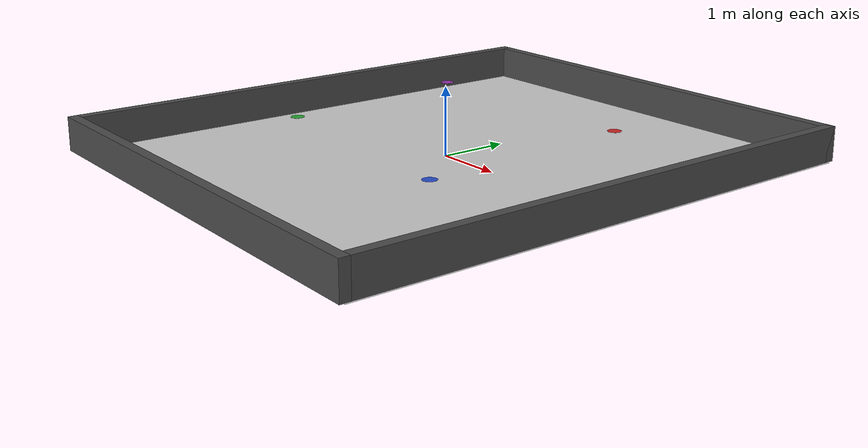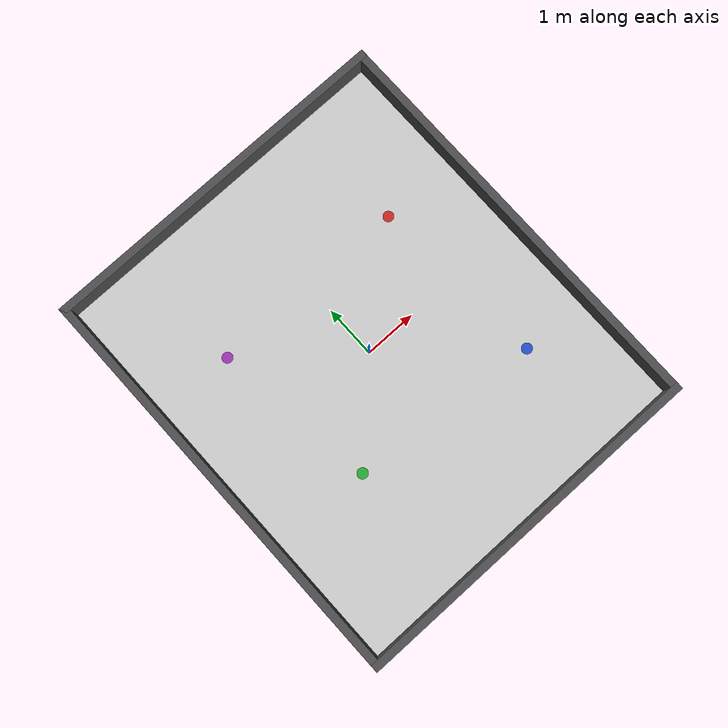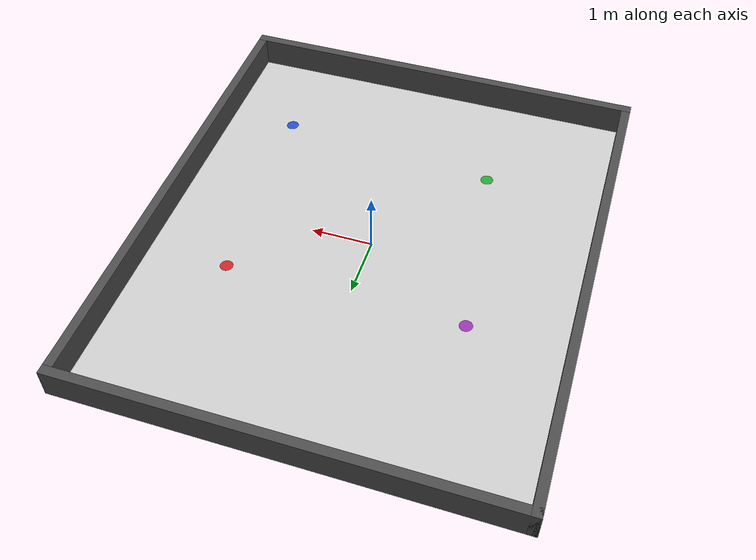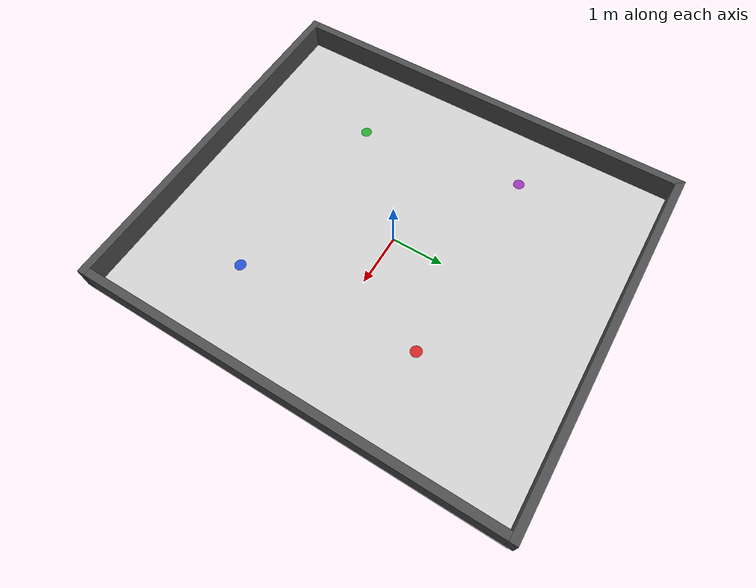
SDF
<?xml version="1.0" ?>
<sdf version="1.6">
  <world name="CaminhoDasCores">
    <scene>
      <ambient>0.6 0.6 0.6 1</ambient>
      <background>0.7 0.7 0.7 1</background>
      <shadows>true</shadows>
    </scene>

    <!-- A global light source  -->
    <include>
      <uri>model://sun</uri>
      <pose> -1.0 2.0 1.0 0 0 0</pose>
    </include>

  <!-- Piso da sala - circuito  e Paredes da Sala -->
    <include>
      <uri>model://Floors/path_of_colors</uri>
      <pose> 0 0 0 0 0 -1.57</pose>
    </include>
    <include>
      <uri>model://Walls/paredes_sala</uri>
      <pose> 0 -4 0 0 0 -1.57</pose>
    </include>

    <!-- Cilindro Cinza -->
    <model name='cilindro_cinza'>
      <pose>-1.9 1.5 0.5 0 -0 0</pose>
      <link name='link'>
        <inertial>
          <mass>10</mass>
          <inertia>
            <ixx>0.145833</ixx>
            <ixy>0</ixy>
            <ixz>0</ixz>
            <iyy>0.145833</iyy>
            <iyz>0</iyz>
            <izz>0.125</izz>
          </inertia>
          <pose>0 0 0 0 -0 0</pose>
        </inertial>
        <collision name='collision'>
          <geometry>
            <cylinder>
              <radius>0.1</radius>
              <length>0.001</length>
            </cylinder>
          </geometry>
          <max_contacts>10</max_contacts>
          <surface>
            <contact>
              <ode/>
            </contact>
            <bounce/>
            <friction>
              <torsional>
                <ode/>
              </torsional>
              <ode/>
            </friction>
          </surface>
        </collision>
        <visual name='visual'>
          <geometry>
            <cylinder>
              <radius>0.1</radius>
              <length>0.001</length>
            </cylinder>
          </geometry>
          <material>
            <script>
              <name>Gazebo/Purple</name>
              <uri>file://media/materials/scripts/gazebo.material</uri>
            </script>
          </material>
        </visual>
        <self_collide>0</self_collide>
        <enable_wind>0</enable_wind>
        <kinematic>0</kinematic>
      </link>
    </model>

    <!-- Cilindro vermelho -->
    <model name='cilindro_vermelho'>
      <pose>1.8 1.5 0.5 0 -0 0</pose>
      <link name='link'>
        <inertial>
          <mass>10</mass>
          <inertia>
            <ixx>0.145833</ixx>
            <ixy>0</ixy>
            <ixz>0</ixz>
            <iyy>0.145833</iyy>
            <iyz>0</iyz>
            <izz>0.125</izz>
          </inertia>
          <pose>0 0 0 0 -0 0</pose>
        </inertial>
        <collision name='collision'>
          <geometry>
            <cylinder>
              <radius>0.1</radius>
              <length>0.001</length>
            </cylinder>
          </geometry>
          <max_contacts>10</max_contacts>
          <surface>
            <contact>
              <ode/>
            </contact>
            <bounce/>
            <friction>
              <torsional>
                <ode/>
              </torsional>
              <ode/>
            </friction>
          </surface>
        </collision>
        <visual name='visual'>
          <geometry>
            <cylinder>
              <radius>0.1</radius>
              <length>0.001</length>
            </cylinder>
          </geometry>
          <material>
            <script>
              <name>Gazebo/Red</name>
              <uri>file://media/materials/scripts/gazebo.material</uri>
            </script>
          </material>
        </visual>
        <self_collide>0</self_collide>
        <enable_wind>0</enable_wind>
        <kinematic>0</kinematic>
      </link>
    </model>

    <!-- Cilindro Azul -->
    <model name='cilindro_azul'>
      <pose>2.0 -1.8 0.5 0 -0 0</pose>
      <link name='link'>
        <inertial>
          <mass>10</mass>
          <inertia>
            <ixx>0.145833</ixx>
            <ixy>0</ixy>
            <ixz>0</ixz>
            <iyy>0.145833</iyy>
            <iyz>0</iyz>
            <izz>0.125</izz>
          </inertia>
          <pose>0 0 0 0 -0 0</pose>
        </inertial>
        <collision name='collision'>
          <geometry>
            <cylinder>
              <radius>0.1</radius>
              <length>0.001</length>
            </cylinder>
          </geometry>
          <max_contacts>10</max_contacts>
          <surface>
            <contact>
              <ode/>
            </contact>
            <bounce/>
            <friction>
              <torsional>
                <ode/>
              </torsional>
              <ode/>
            </friction>
          </surface>
        </collision>
        <visual name='visual'>
          <geometry>
            <cylinder>
              <radius>0.1</radius>
              <length>0.001</length>
            </cylinder>
          </geometry>
          <material>
            <script>
              <name>Gazebo/Blue</name>
              <uri>file://media/materials/scripts/gazebo.material</uri>
            </script>
          </material>
        </visual>
        <self_collide>0</self_collide>
        <enable_wind>0</enable_wind>
        <kinematic>0</kinematic>
      </link>
    </model>

    <!-- Cilindro verde -->
    <model name='cilindro_verde'>
      <pose>-1.5 -1.5 0.5 0 -0 0</pose>
      <link name='link'>
        <inertial>
          <mass>10</mass>
          <inertia>
            <ixx>0.145833</ixx>
            <ixy>0</ixy>
            <ixz>0</ixz>
            <iyy>0.145833</iyy>
            <iyz>0</iyz>
            <izz>0.125</izz>
          </inertia>
          <pose>0 0 0 0 -0 0</pose>
        </inertial>
        <collision name='collision'>
          <geometry>
            <cylinder>
              <radius>0.1</radius>
              <length>0.001</length>
            </cylinder>
          </geometry>
          <max_contacts>10</max_contacts>
          <surface>
            <contact>
              <ode/>
            </contact>
            <bounce/>
            <friction>
              <torsional>
                <ode/>
              </torsional>
              <ode/>
            </friction>
          </surface>
        </collision>
        <visual name='visual'>
          <geometry>
            <cylinder>
              <radius>0.1</radius>
              <length>0.001</length>
            </cylinder>
          </geometry>
          <material>
            <script>
              <name>Gazebo/Green</name>
              <uri>file://media/materials/scripts/gazebo.material</uri>
            </script>
          </material>
        </visual>
        <self_collide>0</self_collide>
        <enable_wind>0</enable_wind>
        <kinematic>0</kinematic>
      </link>
    </model>

    <!-- posicao camera inicial -->
    <gui fullscreen='0'>
      <camera name='user_camera'>
        <pose frame=''>3 -7 10 -0 0.979642 2</pose>
        <view_controller>orbit</view_controller>
        <projection_type>perspective</projection_type>
      </camera>
    </gui>

  </world>
</sdf>

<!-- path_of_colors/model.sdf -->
<sdf version="1.6">
  <model name="path_of_colors">
    <static>true</static>
    <link name="course_link">
      <collision name="course_collision">
        <geometry>
          <plane>
            <normal>0 0 1</normal>
            <size>8 7</size>
          </plane>
        </geometry>
        <surface>
          <friction>
            <ode>
              <mu>100</mu>
              <mu2>50</mu2>
            </ode>
          </friction>
        </surface>
      </collision>
      <visual name="course_visual">
        <cast_shadows>false</cast_shadows>
        <geometry>
	        <plane>
            <normal>0 0 1</normal>
            <size>8 7</size>
          </plane>
        </geometry>
	      <material>
          <script>
            <uri>model://Floors/path_of_colors/materials/scripts</uri>
            <uri>model://Floors/path_of_colors/materials/textures</uri>
            <name>pisosala</name>
          </script>
        </material>
      </visual>
    </link>
  </model>
</sdf>

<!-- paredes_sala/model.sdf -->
<sdf version='1.7'>
  <model name='parede'>
    <link name='Wall_0'>
      <pose>-4.075 -3.425 0.25 0 0 0</pose>
      <self_collide>0</self_collide>
      <enable_wind>0</enable_wind>
      <kinematic>0</kinematic>
      <visual name='Wall_0_Visual'>
        <geometry>
          <box>
            <size>8 0.15 0.5</size>
          </box>
        </geometry>
        <material>
          <script>
            <uri>file://media/materials/scripts/gazebo.material</uri>
            <name>Gazebo/DarkGrey</name>
          </script>
          <ambient>0.5 0.5 0.5 1</ambient>
          <diffuse>1 1 1 1</diffuse>
          <specular>0.2 0.2 0.2 1</specular>
          <emissive>0 0 0 1</emissive>
          <shader type='pixel'/>
        </material>
      </visual>
      <collision name='Wall_0_Collision'>
        <laser_retro>0</laser_retro>
        <max_contacts>10</max_contacts>
        <geometry>
          <box>
            <size>8 0.15 0.5</size>
          </box>
        </geometry>
        <surface>
          <friction>
            <ode>
              <mu>1</mu>
              <mu2>1</mu2>
              <fdir1>0 0 0</fdir1>
              <slip1>0</slip1>
              <slip2>0</slip2>
            </ode>
            <torsional>
              <coefficient>1</coefficient>
              <patch_radius>0</patch_radius>
              <surface_radius>0</surface_radius>
              <use_patch_radius>1</use_patch_radius>
              <ode>
                <slip>0</slip>
              </ode>
            </torsional>
          </friction>
          <bounce>
            <restitution_coefficient>0</restitution_coefficient>
            <threshold>1e+06</threshold>
          </bounce>
          <contact>
            <collide_without_contact>0</collide_without_contact>
            <collide_without_contact_bitmask>1</collide_without_contact_bitmask>
            <collide_bitmask>1</collide_bitmask>
            <ode>
              <soft_cfm>0</soft_cfm>
              <soft_erp>0.2</soft_erp>
              <kp>1e+13</kp>
              <kd>1</kd>
              <max_vel>0.01</max_vel>
              <min_depth>0</min_depth>
            </ode>
            <bullet>
              <split_impulse>1</split_impulse>
              <split_impulse_penetration_threshold>-0.01</split_impulse_penetration_threshold>
              <soft_cfm>0</soft_cfm>
              <soft_erp>0.2</soft_erp>
              <kp>1e+13</kp>
              <kd>1</kd>
            </bullet>
          </contact>
        </surface>
      </collision>
    </link>
    <link name='Wall_1'>
      <pose>0 0 0.25 0 0 0</pose>
      <self_collide>0</self_collide>
      <kinematic>0</kinematic>
      <visual name='Wall_1_Visual'>
        <geometry>
          <box>
            <size>0.15 7 0.5</size>
          </box>
        </geometry>
        <material>
          <script>
            <uri>file://media/materials/scripts/gazebo.material</uri>
            <name>Gazebo/DarkGrey</name>
          </script>
          <ambient>0.5 0.5 0.5 1</ambient>
          <diffuse>1 1 1 1</diffuse>
          <specular>0.2 0.2 0.2 1</specular>
          <emissive>0 0 0 1</emissive>
        </material>
        <transparency>0</transparency>
        <cast_shadows>1</cast_shadows>
      </visual>
      <collision name='Wall_1_Collision'>
        <laser_retro>0</laser_retro>
        <max_contacts>10</max_contacts>
        <geometry>
          <box>
            <size>0.15 7 0.5</size>
          </box>
        </geometry>
        <surface>
          <friction>
            <ode>
              <mu>1</mu>
              <mu2>1</mu2>
              <fdir1>0 0 0</fdir1>
              <slip1>0</slip1>
              <slip2>0</slip2>
            </ode>
            <torsional>
              <coefficient>1</coefficient>
              <patch_radius>0</patch_radius>
              <surface_radius>0</surface_radius>
              <use_patch_radius>1</use_patch_radius>
              <ode>
                <slip>0</slip>
              </ode>
            </torsional>
          </friction>
          <bounce>
            <restitution_coefficient>0</restitution_coefficient>
            <threshold>1e+06</threshold>
          </bounce>
          <contact>
            <collide_without_contact>0</collide_without_contact>
            <collide_without_contact_bitmask>1</collide_without_contact_bitmask>
            <ode>
              <soft_cfm>0</soft_cfm>
              <soft_erp>0.2</soft_erp>
              <kp>1e+13</kp>
              <kd>1</kd>
              <max_vel>0.01</max_vel>
              <min_depth>0</min_depth>
            </ode>
            <bullet>
              <split_impulse>1</split_impulse>
              <split_impulse_penetration_threshold>-0.01</split_impulse_penetration_threshold>
              <soft_cfm>0</soft_cfm>
              <soft_erp>0.2</soft_erp>
              <kp>1e+13</kp>
              <kd>1</kd>
            </bullet>
          </contact>
        </surface>
      </collision>
    </link>
    <link name='Wall_2'>
      <pose>-8 0 0.25 0 0 0 0</pose>
      <self_collide>0</self_collide>
      <enable_wind>0</enable_wind>
      <kinematic>0</kinematic>
      <visual name='Wall_2_Visual'>
        <geometry>
          <box>
            <size>0.15 7 0.5</size>
          </box>
        </geometry>
        <material>
          <script>
            <uri>file://media/materials/scripts/gazebo.material</uri>
            <name>Gazebo/DarkGrey</name>
          </script>
          <ambient>0.5 0.5 0.5 1</ambient>
          <diffuse>1 1 1 1</diffuse>
          <specular>0.2 0.2 0.2 1</specular>
          <emissive>0 0 0 1</emissive>
          <shader type='pixel'/>
        </material>
        <meta>
          <layer>0</layer>
        </meta>
        <transparency>0</transparency>
        <cast_shadows>1</cast_shadows>
      </visual>
      <collision name='Wall_2_Collision'>
        <laser_retro>0</laser_retro>
        <max_contacts>10</max_contacts>
        <geometry>
          <box>
            <size>0.15 7 0.5</size>
          </box>
        </geometry>
        <surface>
          <friction>
            <ode>
              <mu>1</mu>
              <mu2>1</mu2>
              <fdir1>0 0 0</fdir1>
              <slip1>0</slip1>
              <slip2>0</slip2>
            </ode>
            <torsional>
              <coefficient>1</coefficient>
              <patch_radius>0</patch_radius>
              <surface_radius>0</surface_radius>
              <use_patch_radius>1</use_patch_radius>
              <ode>
                <slip>0</slip>
              </ode>
            </torsional>
          </friction>
          <bounce>
            <restitution_coefficient>0</restitution_coefficient>
            <threshold>1e+06</threshold>
          </bounce>
          <contact>
            <collide_without_contact>0</collide_without_contact>
            <collide_without_contact_bitmask>1</collide_without_contact_bitmask>
            <collide_bitmask>1</collide_bitmask>
            <ode>
              <soft_cfm>0</soft_cfm>
              <soft_erp>0.2</soft_erp>
              <kp>1e+13</kp>
              <kd>1</kd>
              <max_vel>0.01</max_vel>
              <min_depth>0</min_depth>
            </ode>
            <bullet>
              <split_impulse>1</split_impulse>
              <split_impulse_penetration_threshold>-0.01</split_impulse_penetration_threshold>
              <soft_cfm>0</soft_cfm>
              <soft_erp>0.2</soft_erp>
              <kp>1e+13</kp>
              <kd>1</kd>
            </bullet>
          </contact>
        </surface>
      </collision>
    </link>
    <link name='Wall_3'>
      <pose>-4.075 3.425 0.25 0 0 0</pose>
      <self_collide>0</self_collide>
      <enable_wind>0</enable_wind>
      <kinematic>0</kinematic>
      <visual name='Wall_3_Visual'>
        <geometry>
          <box>
            <size>8 0.15 0.5</size>
          </box>
        </geometry>
        <material>
          <script>
            <uri>file://media/materials/scripts/gazebo.material</uri>
            <name>Gazebo/DarkGrey</name>
          </script>
          <ambient>0.5 0.5 0.5 1</ambient>
          <diffuse>1 1 1 1</diffuse>
          <specular>0.2 0.2 0.2 1</specular>
          <emissive>0 0 0 1</emissive>
          <shader type='pixel'/>
        </material>
        <meta>
          <layer>0</layer>
        </meta>
        <transparency>0</transparency>
        <cast_shadows>1</cast_shadows>
      </visual>
      <collision name='Wall_3_Collision'>
        <laser_retro>0</laser_retro>
        <max_contacts>10</max_contacts>
        <geometry>
          <box>
            <size>8 0.15 0.5</size>
          </box>
        </geometry>
        <surface>
          <friction>
            <ode>
              <mu>1</mu>
              <mu2>1</mu2>
              <fdir1>0 0 0</fdir1>
              <slip1>0</slip1>
              <slip2>0</slip2>
            </ode>
            <torsional>
              <coefficient>1</coefficient>
              <patch_radius>0</patch_radius>
              <surface_radius>0</surface_radius>
              <use_patch_radius>1</use_patch_radius>
              <ode>
                <slip>0</slip>
              </ode>
            </torsional>
          </friction>
          <bounce>
            <restitution_coefficient>0</restitution_coefficient>
            <threshold>1e+06</threshold>
          </bounce>
          <contact>
            <collide_without_contact>0</collide_without_contact>
            <collide_without_contact_bitmask>1</collide_without_contact_bitmask>
            <collide_bitmask>1</collide_bitmask>
            <ode>
              <soft_cfm>0</soft_cfm>
              <soft_erp>0.2</soft_erp>
              <kp>1e+13</kp>
              <kd>1</kd>
              <max_vel>0.01</max_vel>
              <min_depth>0</min_depth>
            </ode>
            <bullet>
              <split_impulse>1</split_impulse>
              <split_impulse_penetration_threshold>-0.01</split_impulse_penetration_threshold>
              <soft_cfm>0</soft_cfm>
              <soft_erp>0.2</soft_erp>
              <kp>1e+13</kp>
              <kd>1</kd>
            </bullet>
          </contact>
        </surface>
      </collision>
    </link>
    <static>1</static>
    <allow_auto_disable>1</allow_auto_disable>
  </model>
</sdf>
